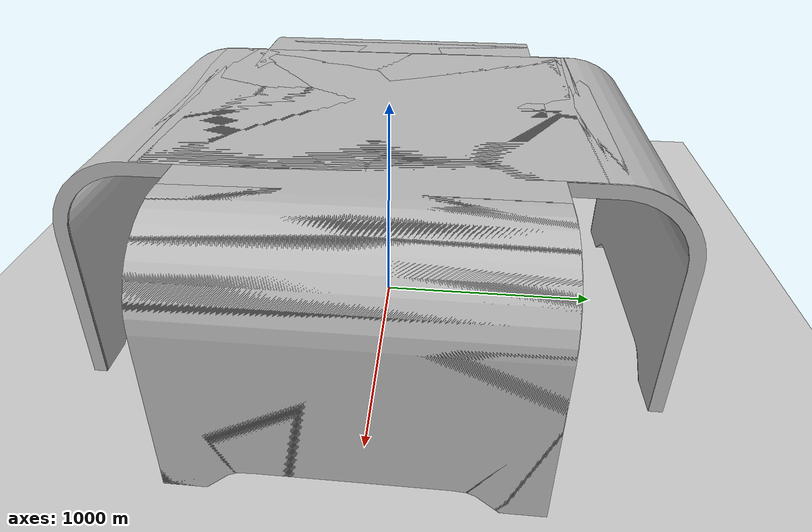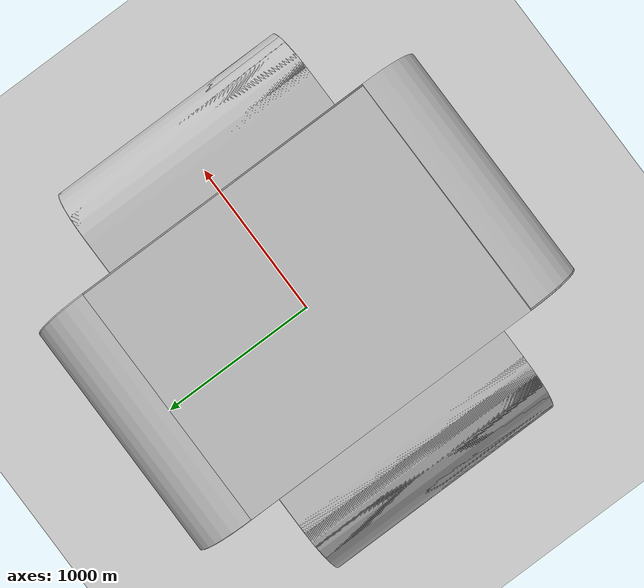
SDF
<sdf version="1.7">
 <world name="sim_world">
  <plugin filename="gz-sim-physics-system" name="gz::sim::systems::Physics"/>
  <plugin filename="gz-sim-sensors-system" name="gz::sim::systems::Sensors">
   <render_engine>ogre2</render_engine>
  </plugin>
  <plugin filename="gz-sim-user-commands-system" name="gz::sim::systems::UserCommands"/>
  <plugin filename="gz-sim-scene-broadcaster-system" name="gz::sim::systems::SceneBroadcaster"/>
  <plugin filename="gz-sim-imu-system" name="gz::sim::systems::Imu"/>
  <scene><ambient>1 1 1</ambient><background>0.8 0.8 0.8</background><grid>false</grid></scene>
  <include><uri>https://fuel.gazebosim.org/1.0/OpenRobotics/models/Ground Plane</uri></include>
  <light type="directional" name="sun">
   <pose>0 0 10 0 0 0</pose>
   <diffuse>1 1 1 1</diffuse>
   <specular>0.2 0.2 0.2 1</specular>
   <attenuation>
    <range>1000</range>
    <constant>0.09</constant>
    <linear>0.001</linear>
    <quadratic>0.001</quadratic>
   </attenuation>
   <direction>-0.5 0.1 -0.9</direction>
  </light>
  <include>
   <name>desk1</name>
   <uri>model://desk</uri>
   <pose>23.17 -18.32 0.0 0 0 1.57</pose>
   <static>True</static>
  </include>
  <include>
   <name>desk2</name>
   <uri>model://desk</uri>
   <pose>24.72 -18.32 0.0 0 0 1.57</pose>
   <static>True</static>
  </include>
  <include>
   <name>desk3</name>
   <uri>model://desk</uri>
   <pose>23.17 -21.15 0.0 0 0 -1.57</pose>
   <static>True</static>
  </include>
  <include>
   <name>desk4</name>
   <uri>model://desk</uri>
   <pose>24.72 -21.15 0.0 0 0 -1.57</pose>
   <static>True</static>
  </include>
  <include>
   <name>desk5</name>
   <uri>model://desk</uri>
   <pose>29.77 -18.46 0.0 0 0 1.57</pose>
   <static>True</static>
  </include>
  <include>
   <name>desk6</name>
   <uri>model://desk</uri>
   <pose>31.48 -18.46 0.0 0 0 1.57</pose>
   <static>True</static>
  </include>
  <include>
   <name>desk7</name>
   <uri>model://desk</uri>
   <pose>29.77 -21.20 0.0 0 0 -1.57</pose>
   <static>True</static>
  </include>
  <include>
   <name>desk8</name>
   <uri>model://desk</uri>
   <pose>31.48 -21.20 0.0 0 0 -1.57</pose>
   <static>True</static>
  </include>
  <include>
   <name>desk9</name>
   <uri>model://desk</uri>
   <pose>35.78 -20.54 0.0 0 0 0.0</pose>
   <static>True</static>
  </include>
  <include>
   <name>desk10</name>
   <uri>model://desk</uri>
   <pose>35.78 -18.84 0.0 0 0 0.0</pose>
   <static>True</static>
  </include>
  <include><name>factory_L1</name><uri>model://factory_L1</uri><pose>0 0 0.01 0 0 0</pose></include>
 </world>
</sdf>

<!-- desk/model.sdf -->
<sdf version="1.5">
  <model name="Desk">
    <link name="link">
      <pose>0 0 0 0 0 0</pose>

        <visual name="visual">
          <geometry>
            <mesh><uri>model://desk/meshes/desk.obj</uri><scale>1.5 2.0 1.5</scale></mesh>

          </geometry>
        </visual>

        <collision name="collision">
          <geometry>
            <mesh><uri>model://desk/meshes/desk.obj</uri><scale>1.5 2.0 1.5</scale></mesh>
          </geometry>
        </collision>

    </link>
  </model>
</sdf>

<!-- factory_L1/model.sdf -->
<sdf version="1.7">
  <model name="factory_L1">
    <static>true</static>
    <link name="floor_1">
      <visual name="visual">
        <geometry>
          <mesh>
            <uri>model://factory_L1/meshes/floor_1.obj</uri>
          </mesh>
        </geometry>
        <material>
          <diffuse>1.0 1.0 1.0</diffuse>
          <specular>0.1 0.1 0.1</specular>
          <pbr>
            <metal>
              <metalness>0.0</metalness>
              <albedo_map>model://factory_L1/meshes/concrete2.png</albedo_map>
            </metal>
          </pbr>
          <script>
            <uri>model://factory_L1/meshes/</uri>
            <name>floor_1_Diffuse</name>
          </script>
        </material>
      </visual>
      <collision name="collision">
        <geometry>
          <mesh>
            <uri>model://factory_L1/meshes/floor_1.obj</uri>
          </mesh>
        </geometry>
        <surface>
          <contact>
            <collide_bitmask>0x01</collide_bitmask>
          </contact>
        </surface>
      </collision>
    </link>
    <link name="wall_1">
      <visual name="wall_1">
        <geometry>
          <mesh>
            <uri>model://factory_L1/meshes/wall_1.obj</uri>
          </mesh>
        </geometry>
        <transparency>0.0</transparency>
        <material>
          <diffuse>1.0 1.0 1.0</diffuse>
          <specular>0.1 0.1 0.1</specular>
          <pbr>
            <metal>
              <metalness>0.0</metalness>
              <albedo_map>model://factory_L1/meshes/default.png</albedo_map>
            </metal>
          </pbr>
          <script>
            <uri>model://factory_L1/meshes/</uri>
            <name>wall_1_Diffuse</name>
          </script>
        </material>
      </visual>
      <collision name="collision">
        <geometry>
          <mesh>
            <uri>model://factory_L1/meshes/wall_1.obj</uri>
          </mesh>
        </geometry>
        <surface>
          <contact>
            <collide_bitmask>0x01</collide_bitmask>
          </contact>
        </surface>
      </collision>
      <pose>0.8579493797601323 -24.564239278019812 0 0 0 0</pose>
    </link>
    <link name="wall_2">
      <visual name="wall_2">
        <geometry>
          <mesh>
            <uri>model://factory_L1/meshes/wall_2.obj</uri>
          </mesh>
        </geometry>
        <transparency>0.0</transparency>
        <material>
          <diffuse>1.0 1.0 1.0</diffuse>
          <specular>0.1 0.1 0.1</specular>
          <pbr>
            <metal>
              <metalness>0.0</metalness>
              <albedo_map>model://factory_L1/meshes/default.png</albedo_map>
            </metal>
          </pbr>
          <script>
            <uri>model://factory_L1/meshes/</uri>
            <name>wall_2_Diffuse</name>
          </script>
        </material>
      </visual>
      <collision name="collision">
        <geometry>
          <mesh>
            <uri>model://factory_L1/meshes/wall_2.obj</uri>
          </mesh>
        </geometry>
        <surface>
          <contact>
            <collide_bitmask>0x01</collide_bitmask>
          </contact>
        </surface>
      </collision>
      <pose>18.81997647929321 -14.547848963419993 0 0 0 0</pose>
    </link>
  </model>
</sdf>
